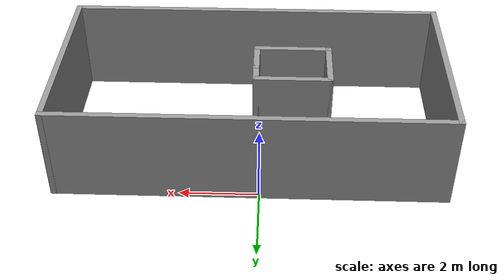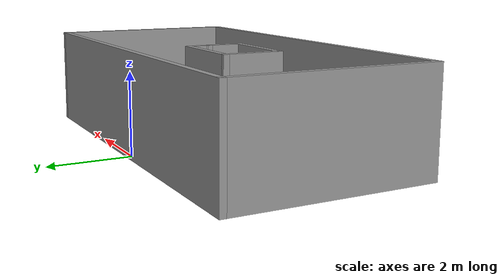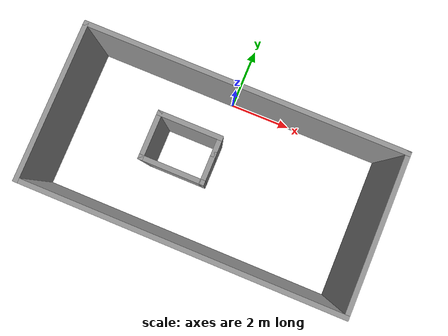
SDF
<?xml version='1.0'?>
<sdf version='1.7'>
  <model name='world_v1'>
    <pose>0.236144 -2.37699 0 0 -0 0</pose>
    <link name='Wall_14'>
      <collision name='Wall_14_Collision'>
        <geometry>
          <box>
            <size>1.5 0.15 2.5</size>
          </box>
        </geometry>
        <pose>0 0 1.25 0 -0 0</pose>
      </collision>
      <visual name='Wall_14_Visual'>
        <pose>0 0 1.25 0 -0 0</pose>
        <geometry>
          <box>
            <size>1.5 0.15 2.5</size>
          </box>
        </geometry>
        <material>
          <script>
            <uri>file://media/materials/scripts/gazebo.material</uri>
            <name>Gazebo/Grey</name>
          </script>
          <ambient>1 1 1 1</ambient>
        </material>
        <meta>
          <layer>0</layer>
        </meta>
      </visual>
      <pose>-1.95614 0.151986 0 0 -0 -1.5708</pose>
    </link>
    <link name='Wall_15'>
      <collision name='Wall_15_Collision'>
        <geometry>
          <box>
            <size>2 0.15 2.5</size>
          </box>
        </geometry>
        <pose>0 0 1.25 0 -0 0</pose>
      </collision>
      <visual name='Wall_15_Visual'>
        <pose>0 0 1.25 0 -0 0</pose>
        <geometry>
          <box>
            <size>2 0.15 2.5</size>
          </box>
        </geometry>
        <material>
          <script>
            <uri>file://media/materials/scripts/gazebo.material</uri>
            <name>Gazebo/Grey</name>
          </script>
          <ambient>1 1 1 1</ambient>
        </material>
        <meta>
          <layer>0</layer>
        </meta>
      </visual>
      <pose>-1.03114 -0.523014 0 0 -0 0</pose>
    </link>
    <link name='Wall_16'>
      <collision name='Wall_16_Collision'>
        <geometry>
          <box>
            <size>1 0.15 2.5</size>
          </box>
        </geometry>
        <pose>0 0 1.25 0 -0 0</pose>
      </collision>
      <visual name='Wall_16_Visual'>
        <pose>0 0 1.25 0 -0 0</pose>
        <geometry>
          <box>
            <size>1 0.15 2.5</size>
          </box>
        </geometry>
        <material>
          <script>
            <uri>file://media/materials/scripts/gazebo.material</uri>
            <name>Gazebo/Grey</name>
          </script>
          <ambient>1 1 1 1</ambient>
        </material>
        <meta>
          <layer>0</layer>
        </meta>
      </visual>
      <pose>-0.106144 -0.098014 0 0 -0 1.5708</pose>
    </link>
    <link name='Wall_35'>
      <collision name='Wall_35_Collision'>
        <geometry>
          <box>
            <size>2 0.15 2.5</size>
          </box>
        </geometry>
        <pose>0 0 1.25 0 -0 0</pose>
      </collision>
      <visual name='Wall_35_Visual'>
        <pose>0 0 1.25 0 -0 0</pose>
        <geometry>
          <box>
            <size>2 0.15 2.5</size>
          </box>
        </geometry>
        <material>
          <script>
            <uri>file://media/materials/scripts/gazebo.material</uri>
            <name>Gazebo/Grey</name>
          </script>
          <ambient>1 1 1 1</ambient>
        </material>
        <meta>
          <layer>0</layer>
        </meta>
      </visual>
      <pose>-1.03114 0.826986 0 0 -0 0</pose>
    </link>
    <link name='Wall_36'>
      <collision name='Wall_36_Collision'>
        <geometry>
          <box>
            <size>0.65 0.15 2.5</size>
          </box>
        </geometry>
        <pose>0 0 1.25 0 -0 0</pose>
      </collision>
      <visual name='Wall_36_Visual'>
        <pose>0 0 1.25 0 -0 0</pose>
        <geometry>
          <box>
            <size>0.65 0.15 2.5</size>
          </box>
        </geometry>
        <material>
          <script>
            <uri>file://media/materials/scripts/gazebo.material</uri>
            <name>Gazebo/Grey</name>
          </script>
          <ambient>1 1 1 1</ambient>
        </material>
        <meta>
          <layer>0</layer>
        </meta>
      </visual>
      <pose>-0.106144 0.576986 0 0 -0 -1.5708</pose>
    </link>
    <link name='Wall_38'>
      <collision name='Wall_38_Collision'>
        <geometry>
          <box>
            <size>10 0.15 2.5</size>
          </box>
        </geometry>
        <pose>0 0 1.25 0 -0 0</pose>
      </collision>
      <visual name='Wall_38_Visual'>
        <pose>0 0 1.25 0 -0 0</pose>
        <geometry>
          <box>
            <size>10 0.15 2.5</size>
          </box>
        </geometry>
        <material>
          <script>
            <uri>file://media/materials/scripts/gazebo.material</uri>
            <name>Gazebo/Grey</name>
          </script>
          <ambient>1 1 1 1</ambient>
        </material>
        <meta>
          <layer>0</layer>
        </meta>
      </visual>
      <pose>0 -2.425 0 0 -0 0</pose>
    </link>
    <link name='Wall_39'>
      <collision name='Wall_39_Collision'>
        <geometry>
          <box>
            <size>5 0.15 2.5</size>
          </box>
        </geometry>
        <pose>0 0 1.25 0 -0 0</pose>
      </collision>
      <visual name='Wall_39_Visual'>
        <pose>0 0 1.25 0 -0 0</pose>
        <geometry>
          <box>
            <size>5 0.15 2.5</size>
          </box>
        </geometry>
        <material>
          <script>
            <uri>file://media/materials/scripts/gazebo.material</uri>
            <name>Gazebo/Grey</name>
          </script>
          <ambient>1 1 1 1</ambient>
        </material>
        <meta>
          <layer>0</layer>
        </meta>
      </visual>
      <pose>4.925 0 0 0 -0 1.5708</pose>
    </link>
    <link name='Wall_40'>
      <collision name='Wall_40_Collision'>
        <geometry>
          <box>
            <size>10 0.15 2.5</size>
          </box>
        </geometry>
        <pose>0 0 1.25 0 -0 0</pose>
      </collision>
      <visual name='Wall_40_Visual'>
        <pose>0 0 1.25 0 -0 0</pose>
        <geometry>
          <box>
            <size>10 0.15 2.5</size>
          </box>
        </geometry>
        <material>
          <script>
            <uri>file://media/materials/scripts/gazebo.material</uri>
            <name>Gazebo/Grey</name>
          </script>
          <ambient>1 1 1 1</ambient>
        </material>
        <meta>
          <layer>0</layer>
        </meta>
      </visual>
      <pose>0 2.425 0 0 -0 3.14159</pose>
    </link>
    <link name='Wall_41'>
      <collision name='Wall_41_Collision'>
        <geometry>
          <box>
            <size>5 0.15 2.5</size>
          </box>
        </geometry>
        <pose>0 0 1.25 0 -0 0</pose>
      </collision>
      <visual name='Wall_41_Visual'>
        <pose>0 0 1.25 0 -0 0</pose>
        <geometry>
          <box>
            <size>5 0.15 2.5</size>
          </box>
        </geometry>
        <material>
          <script>
            <uri>file://media/materials/scripts/gazebo.material</uri>
            <name>Gazebo/Grey</name>
          </script>
          <ambient>1 1 1 1</ambient>
        </material>
        <meta>
          <layer>0</layer>
        </meta>
      </visual>
      <pose>-4.925 0 0 0 -0 -1.5708</pose>
    </link>
    <static>1</static>
  </model>
</sdf>
